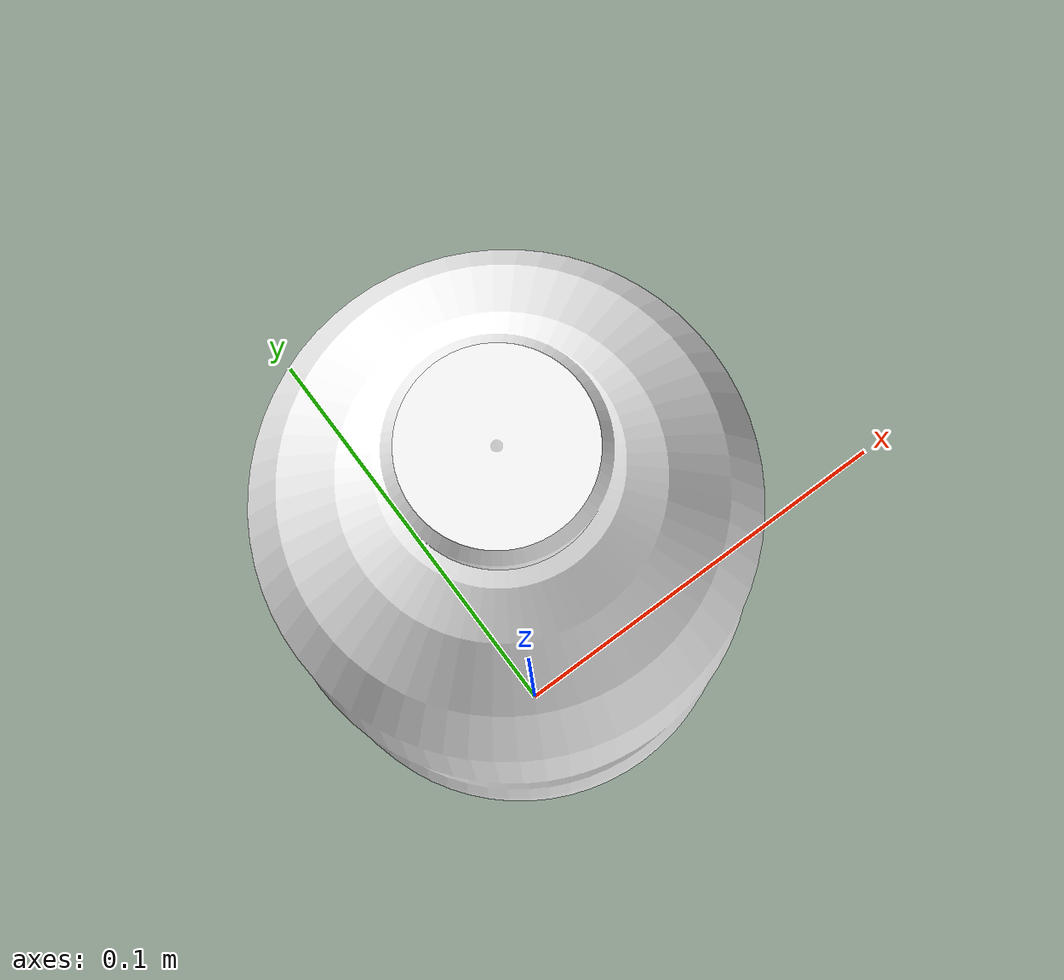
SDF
<?xml version="1.0"?>
<sdf version="1.7">
  <model name="sdrc_water_bottle">
    <static>true</static>
    <link name="link">
      <visual name="bottle_visual">
        <geometry>
          <mesh>
            <uri>model://sdrc_water_bottle/meshes/sdrc_water_bottle.dae</uri>
            <scale>1 1 1</scale>
          </mesh>
        </geometry>
        <material>
          <ambient>1 1 1 1</ambient>
          <diffuse>1 1 1 1</diffuse>
          <specular>0.1 0.1 0.1 1</specular>
          <emissive>0 0 0 1</emissive>
        </material>
      </visual>
      <collision name="bottle_collision">
        <geometry>
          <mesh>
            <uri>model://sdrc_water_bottle/meshes/sdrc_water_bottle.dae</uri>
            <scale>1 1 1</scale>
          </mesh>
        </geometry>
      </collision>
    </link>
  </model>
</sdf>
